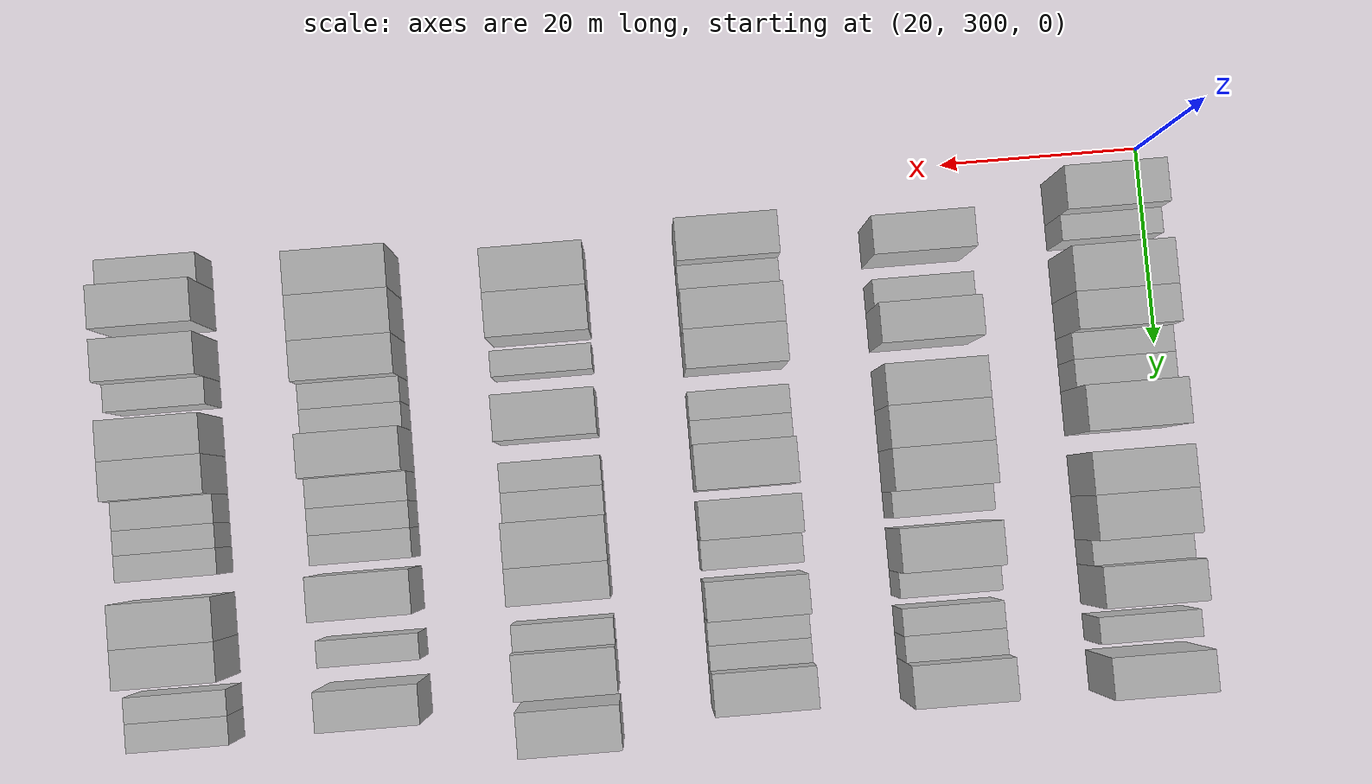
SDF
<sdf version="1.6">
 <world name="default">
  <model name="building_155">
   <static>1</static>
   <pose>25.0000 304.9905 0 0.000000 0.000000 0.000000</pose>
   <link name="link">
    <pose>0 0 4.50 0 0 0</pose>
    <collision name="collision"><geometry><box><size>10.0000 4.2668 9.0000</size></box></geometry></collision>
    <visual name="visual">
     <cast_shadows>0</cast_shadows>
     <geometry><box><size>10.0000 4.2668 9.0000</size></box></geometry>
     <material>
      <script>
       <uri>model://HANNAS_wall/materials/scripts</uri>
       <uri>model://HANNAS_wall/materials/textures</uri>
       <name>vrc/HANNAS_wall</name>
      </script>
     </material>
    </visual>
   </link>
  </model>
  <model name="building_156">
   <static>1</static>
   <pose>25.0000 308.3949 0 0.000000 0.000000 0.000000</pose>
   <link name="link">
    <pose>0 0 3.00 0 0 0</pose>
    <collision name="collision"><geometry><box><size>10.0000 2.5421 6.0000</size></box></geometry></collision>
    <visual name="visual">
     <cast_shadows>0</cast_shadows>
     <geometry><box><size>10.0000 2.5421 6.0000</size></box></geometry>
     <material>
      <script>
       <uri>model://HANNAS_wall/materials/scripts</uri>
       <uri>model://HANNAS_wall/materials/textures</uri>
       <name>vrc/HANNAS_wall</name>
      </script>
     </material>
    </visual>
   </link>
  </model>
  <model name="building_157">
   <static>1</static>
   <pose>25.0000 312.8846 0 0.000000 0.000000 0.000000</pose>
   <link name="link">
    <pose>0 0 4.50 0 0 0</pose>
    <collision name="collision"><geometry><box><size>10.0000 4.4374 9.0000</size></box></geometry></collision>
    <visual name="visual">
     <cast_shadows>0</cast_shadows>
     <geometry><box><size>10.0000 4.4374 9.0000</size></box></geometry>
     <material>
      <script>
       <uri>model://HANNAS_wall/materials/scripts</uri>
       <uri>model://HANNAS_wall/materials/textures</uri>
       <name>vrc/HANNAS_wall</name>
      </script>
     </material>
    </visual>
   </link>
  </model>
  <model name="building_158">
   <static>1</static>
   <pose>25.0000 316.9431 0 0.000000 0.000000 0.000000</pose>
   <link name="link">
    <pose>0 0 4.50 0 0 0</pose>
    <collision name="collision"><geometry><box><size>10.0000 3.6796 9.0000</size></box></geometry></collision>
    <visual name="visual">
     <cast_shadows>0</cast_shadows>
     <geometry><box><size>10.0000 3.6796 9.0000</size></box></geometry>
     <material>
      <script>
       <uri>model://HANNAS_wall/materials/scripts</uri>
       <uri>model://HANNAS_wall/materials/textures</uri>
       <name>vrc/HANNAS_wall</name>
      </script>
     </material>
    </visual>
   </link>
  </model>
  <model name="building_159">
   <static>1</static>
   <pose>25.0000 320.0930 0 0.000000 0.000000 0.000000</pose>
   <link name="link">
    <pose>0 0 3.00 0 0 0</pose>
    <collision name="collision"><geometry><box><size>10.0000 2.6202 6.0000</size></box></geometry></collision>
    <visual name="visual">
     <cast_shadows>0</cast_shadows>
     <geometry><box><size>10.0000 2.6202 6.0000</size></box></geometry>
     <material>
      <script>
       <uri>model://HANNAS_wall/materials/scripts</uri>
       <uri>model://HANNAS_wall/materials/textures</uri>
       <name>vrc/HANNAS_wall</name>
      </script>
     </material>
    </visual>
   </link>
  </model>
  <model name="building_160">
   <static>1</static>
   <pose>25.0000 322.7747 0 0.000000 0.000000 0.000000</pose>
   <link name="link">
    <pose>0 0 3.00 0 0 0</pose>
    <collision name="collision"><geometry><box><size>10.0000 2.7431 6.0000</size></box></geometry></collision>
    <visual name="visual">
     <cast_shadows>0</cast_shadows>
     <geometry><box><size>10.0000 2.7431 6.0000</size></box></geometry>
     <material>
      <script>
       <uri>model://HANNAS_wall/materials/scripts</uri>
       <uri>model://HANNAS_wall/materials/textures</uri>
       <name>vrc/HANNAS_wall</name>
      </script>
     </material>
    </visual>
   </link>
  </model>
  <model name="building_161">
   <static>1</static>
   <pose>25.0000 326.3790 0 0.000000 0.000000 0.000000</pose>
   <link name="link">
    <pose>0 0 4.50 0 0 0</pose>
    <collision name="collision"><geometry><box><size>10.0000 4.4657 9.0000</size></box></geometry></collision>
    <visual name="visual">
     <cast_shadows>0</cast_shadows>
     <geometry><box><size>10.0000 4.4657 9.0000</size></box></geometry>
     <material>
      <script>
       <uri>model://HANNAS_wall/materials/scripts</uri>
       <uri>model://HANNAS_wall/materials/textures</uri>
       <name>vrc/HANNAS_wall</name>
      </script>
     </material>
    </visual>
   </link>
  </model>
  <model name="building_162">
   <static>1</static>
   <pose>25.0000 332.6832 0 0.000000 0.000000 0.000000</pose>
   <link name="link">
    <pose>0 0 4.50 0 0 0</pose>
    <collision name="collision"><geometry><box><size>10.0000 4.1427 9.0000</size></box></geometry></collision>
    <visual name="visual">
     <cast_shadows>0</cast_shadows>
     <geometry><box><size>10.0000 4.1427 9.0000</size></box></geometry>
     <material>
      <script>
       <uri>model://HANNAS_wall/materials/scripts</uri>
       <uri>model://HANNAS_wall/materials/textures</uri>
       <name>vrc/HANNAS_wall</name>
      </script>
     </material>
    </visual>
   </link>
  </model>
  <model name="building_163">
   <static>1</static>
   <pose>25.0000 336.9402 0 0.000000 0.000000 0.000000</pose>
   <link name="link">
    <pose>0 0 4.50 0 0 0</pose>
    <collision name="collision"><geometry><box><size>10.0000 4.3712 9.0000</size></box></geometry></collision>
    <visual name="visual">
     <cast_shadows>0</cast_shadows>
     <geometry><box><size>10.0000 4.3712 9.0000</size></box></geometry>
     <material>
      <script>
       <uri>model://HANNAS_wall/materials/scripts</uri>
       <uri>model://HANNAS_wall/materials/textures</uri>
       <name>vrc/HANNAS_wall</name>
      </script>
     </material>
    </visual>
   </link>
  </model>
  <model name="building_164">
   <static>1</static>
   <pose>25.0000 340.3704 0 0.000000 0.000000 0.000000</pose>
   <link name="link">
    <pose>0 0 3.00 0 0 0</pose>
    <collision name="collision"><geometry><box><size>10.0000 2.4893 6.0000</size></box></geometry></collision>
    <visual name="visual">
     <cast_shadows>0</cast_shadows>
     <geometry><box><size>10.0000 2.4893 6.0000</size></box></geometry>
     <material>
      <script>
       <uri>model://HANNAS_wall/materials/scripts</uri>
       <uri>model://HANNAS_wall/materials/textures</uri>
       <name>vrc/HANNAS_wall</name>
      </script>
     </material>
    </visual>
   </link>
  </model>
  <model name="building_165">
   <static>1</static>
   <pose>25.0000 343.6177 0 0.000000 0.000000 0.000000</pose>
   <link name="link">
    <pose>0 0 4.50 0 0 0</pose>
    <collision name="collision"><geometry><box><size>10.0000 4.0052 9.0000</size></box></geometry></collision>
    <visual name="visual">
     <cast_shadows>0</cast_shadows>
     <geometry><box><size>10.0000 4.0052 9.0000</size></box></geometry>
     <material>
      <script>
       <uri>model://HANNAS_wall/materials/scripts</uri>
       <uri>model://HANNAS_wall/materials/textures</uri>
       <name>vrc/HANNAS_wall</name>
      </script>
     </material>
    </visual>
   </link>
  </model>
  <model name="building_166">
   <static>1</static>
   <pose>25.0000 347.9388 0 0.000000 0.000000 0.000000</pose>
   <link name="link">
    <pose>0 0 3.00 0 0 0</pose>
    <collision name="collision"><geometry><box><size>10.0000 2.6370 6.0000</size></box></geometry></collision>
    <visual name="visual">
     <cast_shadows>0</cast_shadows>
     <geometry><box><size>10.0000 2.6370 6.0000</size></box></geometry>
     <material>
      <script>
       <uri>model://HANNAS_wall/materials/scripts</uri>
       <uri>model://HANNAS_wall/materials/textures</uri>
       <name>vrc/HANNAS_wall</name>
      </script>
     </material>
    </visual>
   </link>
  </model>
  <model name="building_167">
   <static>1</static>
   <pose>25.0000 352.2863 0 0.000000 0.000000 0.000000</pose>
   <link name="link">
    <pose>0 0 4.50 0 0 0</pose>
    <collision name="collision"><geometry><box><size>10.0000 4.0581 9.0000</size></box></geometry></collision>
    <visual name="visual">
     <cast_shadows>0</cast_shadows>
     <geometry><box><size>10.0000 4.0581 9.0000</size></box></geometry>
     <material>
      <script>
       <uri>model://HANNAS_wall/materials/scripts</uri>
       <uri>model://HANNAS_wall/materials/textures</uri>
       <name>vrc/HANNAS_wall</name>
      </script>
     </material>
    </visual>
   </link>
  </model>
  <model name="building_329">
   <static>1</static>
   <pose>44.0000 308.0372 0 0.000000 0.000000 0.000000</pose>
   <link name="link">
    <pose>0 0 4.50 0 0 0</pose>
    <collision name="collision"><geometry><box><size>10.0000 3.7780 9.0000</size></box></geometry></collision>
    <visual name="visual">
     <cast_shadows>0</cast_shadows>
     <geometry><box><size>10.0000 3.7780 9.0000</size></box></geometry>
     <material>
      <script>
       <uri>model://HANNAS_wall/materials/scripts</uri>
       <uri>model://HANNAS_wall/materials/textures</uri>
       <name>vrc/HANNAS_wall</name>
      </script>
     </material>
    </visual>
   </link>
  </model>
  <model name="building_330">
   <static>1</static>
   <pose>44.0000 313.2632 0 0.000000 0.000000 0.000000</pose>
   <link name="link">
    <pose>0 0 3.00 0 0 0</pose>
    <collision name="collision"><geometry><box><size>10.0000 2.6741 6.0000</size></box></geometry></collision>
    <visual name="visual">
     <cast_shadows>0</cast_shadows>
     <geometry><box><size>10.0000 2.6741 6.0000</size></box></geometry>
     <material>
      <script>
       <uri>model://HANNAS_wall/materials/scripts</uri>
       <uri>model://HANNAS_wall/materials/textures</uri>
       <name>vrc/HANNAS_wall</name>
      </script>
     </material>
    </visual>
   </link>
  </model>
  <model name="building_331">
   <static>1</static>
   <pose>44.0000 316.5633 0 0.000000 0.000000 0.000000</pose>
   <link name="link">
    <pose>0 0 4.50 0 0 0</pose>
    <collision name="collision"><geometry><box><size>10.0000 3.9261 9.0000</size></box></geometry></collision>
    <visual name="visual">
     <cast_shadows>0</cast_shadows>
     <geometry><box><size>10.0000 3.9261 9.0000</size></box></geometry>
     <material>
      <script>
       <uri>model://HANNAS_wall/materials/scripts</uri>
       <uri>model://HANNAS_wall/materials/textures</uri>
       <name>vrc/HANNAS_wall</name>
      </script>
     </material>
    </visual>
   </link>
  </model>
  <model name="building_332">
   <static>1</static>
   <pose>44.0000 322.5391 0 0.000000 0.000000 0.000000</pose>
   <link name="link">
    <pose>0 0 4.50 0 0 0</pose>
    <collision name="collision"><geometry><box><size>10.0000 4.0256 9.0000</size></box></geometry></collision>
    <visual name="visual">
     <cast_shadows>0</cast_shadows>
     <geometry><box><size>10.0000 4.0256 9.0000</size></box></geometry>
     <material>
      <script>
       <uri>model://HANNAS_wall/materials/scripts</uri>
       <uri>model://HANNAS_wall/materials/textures</uri>
       <name>vrc/HANNAS_wall</name>
      </script>
     </material>
    </visual>
   </link>
  </model>
  <model name="building_333">
   <static>1</static>
   <pose>44.0000 326.6093 0 0.000000 0.000000 0.000000</pose>
   <link name="link">
    <pose>0 0 4.50 0 0 0</pose>
    <collision name="collision"><geometry><box><size>10.0000 4.1147 9.0000</size></box></geometry></collision>
    <visual name="visual">
     <cast_shadows>0</cast_shadows>
     <geometry><box><size>10.0000 4.1147 9.0000</size></box></geometry>
     <material>
      <script>
       <uri>model://HANNAS_wall/materials/scripts</uri>
       <uri>model://HANNAS_wall/materials/textures</uri>
       <name>vrc/HANNAS_wall</name>
      </script>
     </material>
    </visual>
   </link>
  </model>
  <model name="building_334">
   <static>1</static>
   <pose>44.0000 330.7275 0 0.000000 0.000000 0.000000</pose>
   <link name="link">
    <pose>0 0 4.50 0 0 0</pose>
    <collision name="collision"><geometry><box><size>10.0000 4.1217 9.0000</size></box></geometry></collision>
    <visual name="visual">
     <cast_shadows>0</cast_shadows>
     <geometry><box><size>10.0000 4.1217 9.0000</size></box></geometry>
     <material>
      <script>
       <uri>model://HANNAS_wall/materials/scripts</uri>
       <uri>model://HANNAS_wall/materials/textures</uri>
       <name>vrc/HANNAS_wall</name>
      </script>
     </material>
    </visual>
   </link>
  </model>
  <model name="building_335">
   <static>1</static>
   <pose>44.0000 334.0844 0 0.000000 0.000000 0.000000</pose>
   <link name="link">
    <pose>0 0 3.00 0 0 0</pose>
    <collision name="collision"><geometry><box><size>10.0000 2.5922 6.0000</size></box></geometry></collision>
    <visual name="visual">
     <cast_shadows>0</cast_shadows>
     <geometry><box><size>10.0000 2.5922 6.0000</size></box></geometry>
     <material>
      <script>
       <uri>model://HANNAS_wall/materials/scripts</uri>
       <uri>model://HANNAS_wall/materials/textures</uri>
       <name>vrc/HANNAS_wall</name>
      </script>
     </material>
    </visual>
   </link>
  </model>
  <model name="building_336">
   <static>1</static>
   <pose>44.0000 338.5178 0 0.000000 0.000000 0.000000</pose>
   <link name="link">
    <pose>0 0 4.50 0 0 0</pose>
    <collision name="collision"><geometry><box><size>10.0000 4.2746 9.0000</size></box></geometry></collision>
    <visual name="visual">
     <cast_shadows>0</cast_shadows>
     <geometry><box><size>10.0000 4.2746 9.0000</size></box></geometry>
     <material>
      <script>
       <uri>model://HANNAS_wall/materials/scripts</uri>
       <uri>model://HANNAS_wall/materials/textures</uri>
       <name>vrc/HANNAS_wall</name>
      </script>
     </material>
    </visual>
   </link>
  </model>
  <model name="building_337">
   <static>1</static>
   <pose>44.0000 341.9298 0 0.000000 0.000000 0.000000</pose>
   <link name="link">
    <pose>0 0 3.00 0 0 0</pose>
    <collision name="collision"><geometry><box><size>10.0000 2.5495 6.0000</size></box></geometry></collision>
    <visual name="visual">
     <cast_shadows>0</cast_shadows>
     <geometry><box><size>10.0000 2.5495 6.0000</size></box></geometry>
     <material>
      <script>
       <uri>model://HANNAS_wall/materials/scripts</uri>
       <uri>model://HANNAS_wall/materials/textures</uri>
       <name>vrc/HANNAS_wall</name>
      </script>
     </material>
    </visual>
   </link>
  </model>
  <model name="building_338">
   <static>1</static>
   <pose>44.0000 345.5436 0 0.000000 0.000000 0.000000</pose>
   <link name="link">
    <pose>0 0 3.00 0 0 0</pose>
    <collision name="collision"><geometry><box><size>10.0000 2.6781 6.0000</size></box></geometry></collision>
    <visual name="visual">
     <cast_shadows>0</cast_shadows>
     <geometry><box><size>10.0000 2.6781 6.0000</size></box></geometry>
     <material>
      <script>
       <uri>model://HANNAS_wall/materials/scripts</uri>
       <uri>model://HANNAS_wall/materials/textures</uri>
       <name>vrc/HANNAS_wall</name>
      </script>
     </material>
    </visual>
   </link>
  </model>
  <model name="building_339">
   <static>1</static>
   <pose>44.0000 348.1666 0 0.000000 0.000000 0.000000</pose>
   <link name="link">
    <pose>0 0 3.00 0 0 0</pose>
    <collision name="collision"><geometry><box><size>10.0000 2.5678 6.0000</size></box></geometry></collision>
    <visual name="visual">
     <cast_shadows>0</cast_shadows>
     <geometry><box><size>10.0000 2.5678 6.0000</size></box></geometry>
     <material>
      <script>
       <uri>model://HANNAS_wall/materials/scripts</uri>
       <uri>model://HANNAS_wall/materials/textures</uri>
       <name>vrc/HANNAS_wall</name>
      </script>
     </material>
    </visual>
   </link>
  </model>
  <model name="building_340">
   <static>1</static>
   <pose>44.0000 351.5068 0 0.000000 0.000000 0.000000</pose>
   <link name="link">
    <pose>0 0 4.50 0 0 0</pose>
    <collision name="collision"><geometry><box><size>10.0000 4.1124 9.0000</size></box></geometry></collision>
    <visual name="visual">
     <cast_shadows>0</cast_shadows>
     <geometry><box><size>10.0000 4.1124 9.0000</size></box></geometry>
     <material>
      <script>
       <uri>model://HANNAS_wall/materials/scripts</uri>
       <uri>model://HANNAS_wall/materials/textures</uri>
       <name>vrc/HANNAS_wall</name>
      </script>
     </material>
    </visual>
   </link>
  </model>
  <model name="building_501">
   <static>1</static>
   <pose>63.0000 306.8875 0 0.000000 0.000000 0.000000</pose>
   <link name="link">
    <pose>0 0 4.50 0 0 0</pose>
    <collision name="collision"><geometry><box><size>10.0000 4.1693 9.0000</size></box></geometry></collision>
    <visual name="visual">
     <cast_shadows>0</cast_shadows>
     <geometry><box><size>10.0000 4.1693 9.0000</size></box></geometry>
     <material>
      <script>
       <uri>model://HANNAS_wall/materials/scripts</uri>
       <uri>model://HANNAS_wall/materials/textures</uri>
       <name>vrc/HANNAS_wall</name>
      </script>
     </material>
    </visual>
   </link>
  </model>
  <model name="building_502">
   <static>1</static>
   <pose>63.0000 310.3520 0 0.000000 0.000000 0.000000</pose>
   <link name="link">
    <pose>0 0 3.00 0 0 0</pose>
    <collision name="collision"><geometry><box><size>10.0000 2.7596 6.0000</size></box></geometry></collision>
    <visual name="visual">
     <cast_shadows>0</cast_shadows>
     <geometry><box><size>10.0000 2.7596 6.0000</size></box></geometry>
     <material>
      <script>
       <uri>model://HANNAS_wall/materials/scripts</uri>
       <uri>model://HANNAS_wall/materials/textures</uri>
       <name>vrc/HANNAS_wall</name>
      </script>
     </material>
    </visual>
   </link>
  </model>
  <model name="building_503">
   <static>1</static>
   <pose>63.0000 313.6686 0 0.000000 0.000000 0.000000</pose>
   <link name="link">
    <pose>0 0 4.50 0 0 0</pose>
    <collision name="collision"><geometry><box><size>10.0000 3.8735 9.0000</size></box></geometry></collision>
    <visual name="visual">
     <cast_shadows>0</cast_shadows>
     <geometry><box><size>10.0000 3.8735 9.0000</size></box></geometry>
     <material>
      <script>
       <uri>model://HANNAS_wall/materials/scripts</uri>
       <uri>model://HANNAS_wall/materials/textures</uri>
       <name>vrc/HANNAS_wall</name>
      </script>
     </material>
    </visual>
   </link>
  </model>
  <model name="building_504">
   <static>1</static>
   <pose>63.0000 317.5265 0 0.000000 0.000000 0.000000</pose>
   <link name="link">
    <pose>0 0 4.50 0 0 0</pose>
    <collision name="collision"><geometry><box><size>10.0000 3.8423 9.0000</size></box></geometry></collision>
    <visual name="visual">
     <cast_shadows>0</cast_shadows>
     <geometry><box><size>10.0000 3.8423 9.0000</size></box></geometry>
     <material>
      <script>
       <uri>model://HANNAS_wall/materials/scripts</uri>
       <uri>model://HANNAS_wall/materials/textures</uri>
       <name>vrc/HANNAS_wall</name>
      </script>
     </material>
    </visual>
   </link>
  </model>
  <model name="building_505">
   <static>1</static>
   <pose>63.0000 322.8554 0 0.000000 0.000000 0.000000</pose>
   <link name="link">
    <pose>0 0 3.00 0 0 0</pose>
    <collision name="collision"><geometry><box><size>10.0000 2.8155 6.0000</size></box></geometry></collision>
    <visual name="visual">
     <cast_shadows>0</cast_shadows>
     <geometry><box><size>10.0000 2.8155 6.0000</size></box></geometry>
     <material>
      <script>
       <uri>model://HANNAS_wall/materials/scripts</uri>
       <uri>model://HANNAS_wall/materials/textures</uri>
       <name>vrc/HANNAS_wall</name>
      </script>
     </material>
    </visual>
   </link>
  </model>
  <model name="building_506">
   <static>1</static>
   <pose>63.0000 325.4965 0 0.000000 0.000000 0.000000</pose>
   <link name="link">
    <pose>0 0 3.00 0 0 0</pose>
    <collision name="collision"><geometry><box><size>10.0000 2.4666 6.0000</size></box></geometry></collision>
    <visual name="visual">
     <cast_shadows>0</cast_shadows>
     <geometry><box><size>10.0000 2.4666 6.0000</size></box></geometry>
     <material>
      <script>
       <uri>model://HANNAS_wall/materials/scripts</uri>
       <uri>model://HANNAS_wall/materials/textures</uri>
       <name>vrc/HANNAS_wall</name>
      </script>
     </material>
    </visual>
   </link>
  </model>
  <model name="building_507">
   <static>1</static>
   <pose>63.0000 328.9506 0 0.000000 0.000000 0.000000</pose>
   <link name="link">
    <pose>0 0 4.50 0 0 0</pose>
    <collision name="collision"><geometry><box><size>10.0000 4.4417 9.0000</size></box></geometry></collision>
    <visual name="visual">
     <cast_shadows>0</cast_shadows>
     <geometry><box><size>10.0000 4.4417 9.0000</size></box></geometry>
     <material>
      <script>
       <uri>model://HANNAS_wall/materials/scripts</uri>
       <uri>model://HANNAS_wall/materials/textures</uri>
       <name>vrc/HANNAS_wall</name>
      </script>
     </material>
    </visual>
   </link>
  </model>
  <model name="building_508">
   <static>1</static>
   <pose>63.0000 334.0584 0 0.000000 0.000000 0.000000</pose>
   <link name="link">
    <pose>0 0 4.50 0 0 0</pose>
    <collision name="collision"><geometry><box><size>10.0000 3.7738 9.0000</size></box></geometry></collision>
    <visual name="visual">
     <cast_shadows>0</cast_shadows>
     <geometry><box><size>10.0000 3.7738 9.0000</size></box></geometry>
     <material>
      <script>
       <uri>model://HANNAS_wall/materials/scripts</uri>
       <uri>model://HANNAS_wall/materials/textures</uri>
       <name>vrc/HANNAS_wall</name>
      </script>
     </material>
    </visual>
   </link>
  </model>
  <model name="building_509">
   <static>1</static>
   <pose>63.0000 337.4276 0 0.000000 0.000000 0.000000</pose>
   <link name="link">
    <pose>0 0 3.00 0 0 0</pose>
    <collision name="collision"><geometry><box><size>10.0000 2.9646 6.0000</size></box></geometry></collision>
    <visual name="visual">
     <cast_shadows>0</cast_shadows>
     <geometry><box><size>10.0000 2.9646 6.0000</size></box></geometry>
     <material>
      <script>
       <uri>model://HANNAS_wall/materials/scripts</uri>
       <uri>model://HANNAS_wall/materials/textures</uri>
       <name>vrc/HANNAS_wall</name>
      </script>
     </material>
    </visual>
   </link>
  </model>
  <model name="building_510">
   <static>1</static>
   <pose>63.0000 341.8190 0 0.000000 0.000000 0.000000</pose>
   <link name="link">
    <pose>0 0 4.50 0 0 0</pose>
    <collision name="collision"><geometry><box><size>10.0000 3.8181 9.0000</size></box></geometry></collision>
    <visual name="visual">
     <cast_shadows>0</cast_shadows>
     <geometry><box><size>10.0000 3.8181 9.0000</size></box></geometry>
     <material>
      <script>
       <uri>model://HANNAS_wall/materials/scripts</uri>
       <uri>model://HANNAS_wall/materials/textures</uri>
       <name>vrc/HANNAS_wall</name>
      </script>
     </material>
    </visual>
   </link>
  </model>
  <model name="building_511">
   <static>1</static>
   <pose>63.0000 344.9813 0 0.000000 0.000000 0.000000</pose>
   <link name="link">
    <pose>0 0 3.00 0 0 0</pose>
    <collision name="collision"><geometry><box><size>10.0000 2.5065 6.0000</size></box></geometry></collision>
    <visual name="visual">
     <cast_shadows>0</cast_shadows>
     <geometry><box><size>10.0000 2.5065 6.0000</size></box></geometry>
     <material>
      <script>
       <uri>model://HANNAS_wall/materials/scripts</uri>
       <uri>model://HANNAS_wall/materials/textures</uri>
       <name>vrc/HANNAS_wall</name>
      </script>
     </material>
    </visual>
   </link>
  </model>
  <model name="building_512">
   <static>1</static>
   <pose>63.0000 347.4413 0 0.000000 0.000000 0.000000</pose>
   <link name="link">
    <pose>0 0 3.00 0 0 0</pose>
    <collision name="collision"><geometry><box><size>10.0000 2.4136 6.0000</size></box></geometry></collision>
    <visual name="visual">
     <cast_shadows>0</cast_shadows>
     <geometry><box><size>10.0000 2.4136 6.0000</size></box></geometry>
     <material>
      <script>
       <uri>model://HANNAS_wall/materials/scripts</uri>
       <uri>model://HANNAS_wall/materials/textures</uri>
       <name>vrc/HANNAS_wall</name>
      </script>
     </material>
    </visual>
   </link>
  </model>
  <model name="building_513">
   <static>1</static>
   <pose>63.0000 350.6951 0 0.000000 0.000000 0.000000</pose>
   <link name="link">
    <pose>0 0 4.50 0 0 0</pose>
    <collision name="collision"><geometry><box><size>10.0000 4.0941 9.0000</size></box></geometry></collision>
    <visual name="visual">
     <cast_shadows>0</cast_shadows>
     <geometry><box><size>10.0000 4.0941 9.0000</size></box></geometry>
     <material>
      <script>
       <uri>model://HANNAS_wall/materials/scripts</uri>
       <uri>model://HANNAS_wall/materials/textures</uri>
       <name>vrc/HANNAS_wall</name>
      </script>
     </material>
    </visual>
   </link>
  </model>
  <model name="building_686">
   <static>1</static>
   <pose>82.0000 308.3115 0 0.000000 0.000000 0.000000</pose>
   <link name="link">
    <pose>0 0 4.50 0 0 0</pose>
    <collision name="collision"><geometry><box><size>10.0000 4.2965 9.0000</size></box></geometry></collision>
    <visual name="visual">
     <cast_shadows>0</cast_shadows>
     <geometry><box><size>10.0000 4.2965 9.0000</size></box></geometry>
     <material>
      <script>
       <uri>model://HANNAS_wall/materials/scripts</uri>
       <uri>model://HANNAS_wall/materials/textures</uri>
       <name>vrc/HANNAS_wall</name>
      </script>
     </material>
    </visual>
   </link>
  </model>
  <model name="building_687">
   <static>1</static>
   <pose>82.0000 312.6453 0 0.000000 0.000000 0.000000</pose>
   <link name="link">
    <pose>0 0 4.50 0 0 0</pose>
    <collision name="collision"><geometry><box><size>10.0000 4.3709 9.0000</size></box></geometry></collision>
    <visual name="visual">
     <cast_shadows>0</cast_shadows>
     <geometry><box><size>10.0000 4.3709 9.0000</size></box></geometry>
     <material>
      <script>
       <uri>model://HANNAS_wall/materials/scripts</uri>
       <uri>model://HANNAS_wall/materials/textures</uri>
       <name>vrc/HANNAS_wall</name>
      </script>
     </material>
    </visual>
   </link>
  </model>
  <model name="building_688">
   <static>1</static>
   <pose>82.0000 317.1031 0 0.000000 0.000000 0.000000</pose>
   <link name="link">
    <pose>0 0 3.00 0 0 0</pose>
    <collision name="collision"><geometry><box><size>10.0000 2.5447 6.0000</size></box></geometry></collision>
    <visual name="visual">
     <cast_shadows>0</cast_shadows>
     <geometry><box><size>10.0000 2.5447 6.0000</size></box></geometry>
     <material>
      <script>
       <uri>model://HANNAS_wall/materials/scripts</uri>
       <uri>model://HANNAS_wall/materials/textures</uri>
       <name>vrc/HANNAS_wall</name>
      </script>
     </material>
    </visual>
   </link>
  </model>
  <model name="building_689">
   <static>1</static>
   <pose>82.0000 322.6159 0 0.000000 0.000000 0.000000</pose>
   <link name="link">
    <pose>0 0 4.50 0 0 0</pose>
    <collision name="collision"><geometry><box><size>10.0000 4.4808 9.0000</size></box></geometry></collision>
    <visual name="visual">
     <cast_shadows>0</cast_shadows>
     <geometry><box><size>10.0000 4.4808 9.0000</size></box></geometry>
     <material>
      <script>
       <uri>model://HANNAS_wall/materials/scripts</uri>
       <uri>model://HANNAS_wall/materials/textures</uri>
       <name>vrc/HANNAS_wall</name>
      </script>
     </material>
    </visual>
   </link>
  </model>
  <model name="building_690">
   <static>1</static>
   <pose>82.0000 328.3118 0 0.000000 0.000000 0.000000</pose>
   <link name="link">
    <pose>0 0 3.00 0 0 0</pose>
    <collision name="collision"><geometry><box><size>10.0000 2.9109 6.0000</size></box></geometry></collision>
    <visual name="visual">
     <cast_shadows>0</cast_shadows>
     <geometry><box><size>10.0000 2.9109 6.0000</size></box></geometry>
     <material>
      <script>
       <uri>model://HANNAS_wall/materials/scripts</uri>
       <uri>model://HANNAS_wall/materials/textures</uri>
       <name>vrc/HANNAS_wall</name>
      </script>
     </material>
    </visual>
   </link>
  </model>
  <model name="building_691">
   <static>1</static>
   <pose>82.0000 331.2262 0 0.000000 0.000000 0.000000</pose>
   <link name="link">
    <pose>0 0 3.00 0 0 0</pose>
    <collision name="collision"><geometry><box><size>10.0000 2.9180 6.0000</size></box></geometry></collision>
    <visual name="visual">
     <cast_shadows>0</cast_shadows>
     <geometry><box><size>10.0000 2.9180 6.0000</size></box></geometry>
     <material>
      <script>
       <uri>model://HANNAS_wall/materials/scripts</uri>
       <uri>model://HANNAS_wall/materials/textures</uri>
       <name>vrc/HANNAS_wall</name>
      </script>
     </material>
    </visual>
   </link>
  </model>
  <model name="building_692">
   <static>1</static>
   <pose>82.0000 334.8748 0 0.000000 0.000000 0.000000</pose>
   <link name="link">
    <pose>0 0 4.50 0 0 0</pose>
    <collision name="collision"><geometry><box><size>10.0000 4.3793 9.0000</size></box></geometry></collision>
    <visual name="visual">
     <cast_shadows>0</cast_shadows>
     <geometry><box><size>10.0000 4.3793 9.0000</size></box></geometry>
     <material>
      <script>
       <uri>model://HANNAS_wall/materials/scripts</uri>
       <uri>model://HANNAS_wall/materials/textures</uri>
       <name>vrc/HANNAS_wall</name>
      </script>
     </material>
    </visual>
   </link>
  </model>
  <model name="building_693">
   <static>1</static>
   <pose>82.0000 338.8676 0 0.000000 0.000000 0.000000</pose>
   <link name="link">
    <pose>0 0 4.50 0 0 0</pose>
    <collision name="collision"><geometry><box><size>10.0000 3.6063 9.0000</size></box></geometry></collision>
    <visual name="visual">
     <cast_shadows>0</cast_shadows>
     <geometry><box><size>10.0000 3.6063 9.0000</size></box></geometry>
     <material>
      <script>
       <uri>model://HANNAS_wall/materials/scripts</uri>
       <uri>model://HANNAS_wall/materials/textures</uri>
       <name>vrc/HANNAS_wall</name>
      </script>
     </material>
    </visual>
   </link>
  </model>
  <model name="building_694">
   <static>1</static>
   <pose>82.0000 343.9702 0 0.000000 0.000000 0.000000</pose>
   <link name="link">
    <pose>0 0 3.00 0 0 0</pose>
    <collision name="collision"><geometry><box><size>10.0000 2.5990 6.0000</size></box></geometry></collision>
    <visual name="visual">
     <cast_shadows>0</cast_shadows>
     <geometry><box><size>10.0000 2.5990 6.0000</size></box></geometry>
     <material>
      <script>
       <uri>model://HANNAS_wall/materials/scripts</uri>
       <uri>model://HANNAS_wall/materials/textures</uri>
       <name>vrc/HANNAS_wall</name>
      </script>
     </material>
    </visual>
   </link>
  </model>
  <model name="building_695">
   <static>1</static>
   <pose>82.0000 347.5009 0 0.000000 0.000000 0.000000</pose>
   <link name="link">
    <pose>0 0 4.50 0 0 0</pose>
    <collision name="collision"><geometry><box><size>10.0000 4.4624 9.0000</size></box></geometry></collision>
    <visual name="visual">
     <cast_shadows>0</cast_shadows>
     <geometry><box><size>10.0000 4.4624 9.0000</size></box></geometry>
     <material>
      <script>
       <uri>model://HANNAS_wall/materials/scripts</uri>
       <uri>model://HANNAS_wall/materials/textures</uri>
       <name>vrc/HANNAS_wall</name>
      </script>
     </material>
    </visual>
   </link>
  </model>
  <model name="building_696">
   <static>1</static>
   <pose>82.0000 352.9234 0 0.000000 0.000000 0.000000</pose>
   <link name="link">
    <pose>0 0 4.50 0 0 0</pose>
    <collision name="collision"><geometry><box><size>10.0000 4.3827 9.0000</size></box></geometry></collision>
    <visual name="visual">
     <cast_shadows>0</cast_shadows>
     <geometry><box><size>10.0000 4.3827 9.0000</size></box></geometry>
     <material>
      <script>
       <uri>model://HANNAS_wall/materials/scripts</uri>
       <uri>model://HANNAS_wall/materials/textures</uri>
       <name>vrc/HANNAS_wall</name>
      </script>
     </material>
    </visual>
   </link>
  </model>
  <model name="building_856">
   <static>1</static>
   <pose>101.0000 307.0249 0 0.000000 0.000000 0.000000</pose>
   <link name="link">
    <pose>0 0 4.50 0 0 0</pose>
    <collision name="collision"><geometry><box><size>10.0000 4.2666 9.0000</size></box></geometry></collision>
    <visual name="visual">
     <cast_shadows>0</cast_shadows>
     <geometry><box><size>10.0000 4.2666 9.0000</size></box></geometry>
     <material>
      <script>
       <uri>model://HANNAS_wall/materials/scripts</uri>
       <uri>model://HANNAS_wall/materials/textures</uri>
       <name>vrc/HANNAS_wall</name>
      </script>
     </material>
    </visual>
   </link>
  </model>
  <model name="building_857">
   <static>1</static>
   <pose>101.0000 311.3600 0 0.000000 0.000000 0.000000</pose>
   <link name="link">
    <pose>0 0 4.50 0 0 0</pose>
    <collision name="collision"><geometry><box><size>10.0000 4.4036 9.0000</size></box></geometry></collision>
    <visual name="visual">
     <cast_shadows>0</cast_shadows>
     <geometry><box><size>10.0000 4.4036 9.0000</size></box></geometry>
     <material>
      <script>
       <uri>model://HANNAS_wall/materials/scripts</uri>
       <uri>model://HANNAS_wall/materials/textures</uri>
       <name>vrc/HANNAS_wall</name>
      </script>
     </material>
    </visual>
   </link>
  </model>
  <model name="building_858">
   <static>1</static>
   <pose>101.0000 315.5301 0 0.000000 0.000000 0.000000</pose>
   <link name="link">
    <pose>0 0 4.50 0 0 0</pose>
    <collision name="collision"><geometry><box><size>10.0000 3.9367 9.0000</size></box></geometry></collision>
    <visual name="visual">
     <cast_shadows>0</cast_shadows>
     <geometry><box><size>10.0000 3.9367 9.0000</size></box></geometry>
     <material>
      <script>
       <uri>model://HANNAS_wall/materials/scripts</uri>
       <uri>model://HANNAS_wall/materials/textures</uri>
       <name>vrc/HANNAS_wall</name>
      </script>
     </material>
    </visual>
   </link>
  </model>
  <model name="building_859">
   <static>1</static>
   <pose>101.0000 318.7576 0 0.000000 0.000000 0.000000</pose>
   <link name="link">
    <pose>0 0 3.00 0 0 0</pose>
    <collision name="collision"><geometry><box><size>10.0000 2.5183 6.0000</size></box></geometry></collision>
    <visual name="visual">
     <cast_shadows>0</cast_shadows>
     <geometry><box><size>10.0000 2.5183 6.0000</size></box></geometry>
     <material>
      <script>
       <uri>model://HANNAS_wall/materials/scripts</uri>
       <uri>model://HANNAS_wall/materials/textures</uri>
       <name>vrc/HANNAS_wall</name>
      </script>
     </material>
    </visual>
   </link>
  </model>
  <model name="building_860">
   <static>1</static>
   <pose>101.0000 321.2814 0 0.000000 0.000000 0.000000</pose>
   <link name="link">
    <pose>0 0 3.00 0 0 0</pose>
    <collision name="collision"><geometry><box><size>10.0000 2.5292 6.0000</size></box></geometry></collision>
    <visual name="visual">
     <cast_shadows>0</cast_shadows>
     <geometry><box><size>10.0000 2.5292 6.0000</size></box></geometry>
     <material>
      <script>
       <uri>model://HANNAS_wall/materials/scripts</uri>
       <uri>model://HANNAS_wall/materials/textures</uri>
       <name>vrc/HANNAS_wall</name>
      </script>
     </material>
    </visual>
   </link>
  </model>
  <model name="building_861">
   <static>1</static>
   <pose>101.0000 324.6812 0 0.000000 0.000000 0.000000</pose>
   <link name="link">
    <pose>0 0 4.50 0 0 0</pose>
    <collision name="collision"><geometry><box><size>10.0000 4.2705 9.0000</size></box></geometry></collision>
    <visual name="visual">
     <cast_shadows>0</cast_shadows>
     <geometry><box><size>10.0000 4.2705 9.0000</size></box></geometry>
     <material>
      <script>
       <uri>model://HANNAS_wall/materials/scripts</uri>
       <uri>model://HANNAS_wall/materials/textures</uri>
       <name>vrc/HANNAS_wall</name>
      </script>
     </material>
    </visual>
   </link>
  </model>
  <model name="building_862">
   <static>1</static>
   <pose>101.0000 328.2613 0 0.000000 0.000000 0.000000</pose>
   <link name="link">
    <pose>0 0 3.00 0 0 0</pose>
    <collision name="collision"><geometry><box><size>10.0000 2.8897 6.0000</size></box></geometry></collision>
    <visual name="visual">
     <cast_shadows>0</cast_shadows>
     <geometry><box><size>10.0000 2.8897 6.0000</size></box></geometry>
     <material>
      <script>
       <uri>model://HANNAS_wall/materials/scripts</uri>
       <uri>model://HANNAS_wall/materials/textures</uri>
       <name>vrc/HANNAS_wall</name>
      </script>
     </material>
    </visual>
   </link>
  </model>
  <model name="building_863">
   <static>1</static>
   <pose>101.0000 331.0308 0 0.000000 0.000000 0.000000</pose>
   <link name="link">
    <pose>0 0 3.00 0 0 0</pose>
    <collision name="collision"><geometry><box><size>10.0000 2.6494 6.0000</size></box></geometry></collision>
    <visual name="visual">
     <cast_shadows>0</cast_shadows>
     <geometry><box><size>10.0000 2.6494 6.0000</size></box></geometry>
     <material>
      <script>
       <uri>model://HANNAS_wall/materials/scripts</uri>
       <uri>model://HANNAS_wall/materials/textures</uri>
       <name>vrc/HANNAS_wall</name>
      </script>
     </material>
    </visual>
   </link>
  </model>
  <model name="building_864">
   <static>1</static>
   <pose>101.0000 333.8135 0 0.000000 0.000000 0.000000</pose>
   <link name="link">
    <pose>0 0 3.00 0 0 0</pose>
    <collision name="collision"><geometry><box><size>10.0000 2.9160 6.0000</size></box></geometry></collision>
    <visual name="visual">
     <cast_shadows>0</cast_shadows>
     <geometry><box><size>10.0000 2.9160 6.0000</size></box></geometry>
     <material>
      <script>
       <uri>model://HANNAS_wall/materials/scripts</uri>
       <uri>model://HANNAS_wall/materials/textures</uri>
       <name>vrc/HANNAS_wall</name>
      </script>
     </material>
    </visual>
   </link>
  </model>
  <model name="building_865">
   <static>1</static>
   <pose>101.0000 338.4326 0 0.000000 0.000000 0.000000</pose>
   <link name="link">
    <pose>0 0 4.50 0 0 0</pose>
    <collision name="collision"><geometry><box><size>10.0000 4.3221 9.0000</size></box></geometry></collision>
    <visual name="visual">
     <cast_shadows>0</cast_shadows>
     <geometry><box><size>10.0000 4.3221 9.0000</size></box></geometry>
     <material>
      <script>
       <uri>model://HANNAS_wall/materials/scripts</uri>
       <uri>model://HANNAS_wall/materials/textures</uri>
       <name>vrc/HANNAS_wall</name>
      </script>
     </material>
    </visual>
   </link>
  </model>
  <model name="building_866">
   <static>1</static>
   <pose>101.0000 343.8949 0 0.000000 0.000000 0.000000</pose>
   <link name="link">
    <pose>0 0 3.00 0 0 0</pose>
    <collision name="collision"><geometry><box><size>10.0000 2.6025 6.0000</size></box></geometry></collision>
    <visual name="visual">
     <cast_shadows>0</cast_shadows>
     <geometry><box><size>10.0000 2.6025 6.0000</size></box></geometry>
     <material>
      <script>
       <uri>model://HANNAS_wall/materials/scripts</uri>
       <uri>model://HANNAS_wall/materials/textures</uri>
       <name>vrc/HANNAS_wall</name>
      </script>
     </material>
    </visual>
   </link>
  </model>
  <model name="building_867">
   <static>1</static>
   <pose>101.0000 349.1438 0 0.000000 0.000000 0.000000</pose>
   <link name="link">
    <pose>0 0 4.50 0 0 0</pose>
    <collision name="collision"><geometry><box><size>10.0000 3.8953 9.0000</size></box></geometry></collision>
    <visual name="visual">
     <cast_shadows>0</cast_shadows>
     <geometry><box><size>10.0000 3.8953 9.0000</size></box></geometry>
     <material>
      <script>
       <uri>model://HANNAS_wall/materials/scripts</uri>
       <uri>model://HANNAS_wall/materials/textures</uri>
       <name>vrc/HANNAS_wall</name>
      </script>
     </material>
    </visual>
   </link>
  </model>
  <model name="building_1022">
   <static>1</static>
   <pose>120.0000 305.1406 0 0.000000 0.000000 0.000000</pose>
   <link name="link">
    <pose>0 0 3.00 0 0 0</pose>
    <collision name="collision"><geometry><box><size>10.0000 2.9271 6.0000</size></box></geometry></collision>
    <visual name="visual">
     <cast_shadows>0</cast_shadows>
     <geometry><box><size>10.0000 2.9271 6.0000</size></box></geometry>
     <material>
      <script>
       <uri>model://HANNAS_wall/materials/scripts</uri>
       <uri>model://HANNAS_wall/materials/textures</uri>
       <name>vrc/HANNAS_wall</name>
      </script>
     </material>
    </visual>
   </link>
  </model>
  <model name="building_1023">
   <static>1</static>
   <pose>120.0000 308.7202 0 0.000000 0.000000 0.000000</pose>
   <link name="link">
    <pose>0 0 4.50 0 0 0</pose>
    <collision name="collision"><geometry><box><size>10.0000 4.2322 9.0000</size></box></geometry></collision>
    <visual name="visual">
     <cast_shadows>0</cast_shadows>
     <geometry><box><size>10.0000 4.2322 9.0000</size></box></geometry>
     <material>
      <script>
       <uri>model://HANNAS_wall/materials/scripts</uri>
       <uri>model://HANNAS_wall/materials/textures</uri>
       <name>vrc/HANNAS_wall</name>
      </script>
     </material>
    </visual>
   </link>
  </model>
  <model name="building_1024">
   <static>1</static>
   <pose>120.0000 313.9044 0 0.000000 0.000000 0.000000</pose>
   <link name="link">
    <pose>0 0 4.50 0 0 0</pose>
    <collision name="collision"><geometry><box><size>10.0000 4.1363 9.0000</size></box></geometry></collision>
    <visual name="visual">
     <cast_shadows>0</cast_shadows>
     <geometry><box><size>10.0000 4.1363 9.0000</size></box></geometry>
     <material>
      <script>
       <uri>model://HANNAS_wall/materials/scripts</uri>
       <uri>model://HANNAS_wall/materials/textures</uri>
       <name>vrc/HANNAS_wall</name>
      </script>
     </material>
    </visual>
   </link>
  </model>
  <model name="building_1025">
   <static>1</static>
   <pose>120.0000 317.3312 0 0.000000 0.000000 0.000000</pose>
   <link name="link">
    <pose>0 0 3.00 0 0 0</pose>
    <collision name="collision"><geometry><box><size>10.0000 2.7173 6.0000</size></box></geometry></collision>
    <visual name="visual">
     <cast_shadows>0</cast_shadows>
     <geometry><box><size>10.0000 2.7173 6.0000</size></box></geometry>
     <material>
      <script>
       <uri>model://HANNAS_wall/materials/scripts</uri>
       <uri>model://HANNAS_wall/materials/textures</uri>
       <name>vrc/HANNAS_wall</name>
      </script>
     </material>
    </visual>
   </link>
  </model>
  <model name="building_1026">
   <static>1</static>
   <pose>120.0000 321.6649 0 0.000000 0.000000 0.000000</pose>
   <link name="link">
    <pose>0 0 4.50 0 0 0</pose>
    <collision name="collision"><geometry><box><size>10.0000 3.9499 9.0000</size></box></geometry></collision>
    <visual name="visual">
     <cast_shadows>0</cast_shadows>
     <geometry><box><size>10.0000 3.9499 9.0000</size></box></geometry>
     <material>
      <script>
       <uri>model://HANNAS_wall/materials/scripts</uri>
       <uri>model://HANNAS_wall/materials/textures</uri>
       <name>vrc/HANNAS_wall</name>
      </script>
     </material>
    </visual>
   </link>
  </model>
  <model name="building_1027">
   <static>1</static>
   <pose>120.0000 325.5594 0 0.000000 0.000000 0.000000</pose>
   <link name="link">
    <pose>0 0 4.50 0 0 0</pose>
    <collision name="collision"><geometry><box><size>10.0000 3.8392 9.0000</size></box></geometry></collision>
    <visual name="visual">
     <cast_shadows>0</cast_shadows>
     <geometry><box><size>10.0000 3.8392 9.0000</size></box></geometry>
     <material>
      <script>
       <uri>model://HANNAS_wall/materials/scripts</uri>
       <uri>model://HANNAS_wall/materials/textures</uri>
       <name>vrc/HANNAS_wall</name>
      </script>
     </material>
    </visual>
   </link>
  </model>
  <model name="building_1028">
   <static>1</static>
   <pose>120.0000 328.9009 0 0.000000 0.000000 0.000000</pose>
   <link name="link">
    <pose>0 0 3.00 0 0 0</pose>
    <collision name="collision"><geometry><box><size>10.0000 2.8437 6.0000</size></box></geometry></collision>
    <visual name="visual">
     <cast_shadows>0</cast_shadows>
     <geometry><box><size>10.0000 2.8437 6.0000</size></box></geometry>
     <material>
      <script>
       <uri>model://HANNAS_wall/materials/scripts</uri>
       <uri>model://HANNAS_wall/materials/textures</uri>
       <name>vrc/HANNAS_wall</name>
      </script>
     </material>
    </visual>
   </link>
  </model>
  <model name="building_1029">
   <static>1</static>
   <pose>120.0000 331.5374 0 0.000000 0.000000 0.000000</pose>
   <link name="link">
    <pose>0 0 3.00 0 0 0</pose>
    <collision name="collision"><geometry><box><size>10.0000 2.4294 6.0000</size></box></geometry></collision>
    <visual name="visual">
     <cast_shadows>0</cast_shadows>
     <geometry><box><size>10.0000 2.4294 6.0000</size></box></geometry>
     <material>
      <script>
       <uri>model://HANNAS_wall/materials/scripts</uri>
       <uri>model://HANNAS_wall/materials/textures</uri>
       <name>vrc/HANNAS_wall</name>
      </script>
     </material>
    </visual>
   </link>
  </model>
  <model name="building_1030">
   <static>1</static>
   <pose>120.0000 334.0517 0 0.000000 0.000000 0.000000</pose>
   <link name="link">
    <pose>0 0 3.00 0 0 0</pose>
    <collision name="collision"><geometry><box><size>10.0000 2.5992 6.0000</size></box></geometry></collision>
    <visual name="visual">
     <cast_shadows>0</cast_shadows>
     <geometry><box><size>10.0000 2.5992 6.0000</size></box></geometry>
     <material>
      <script>
       <uri>model://HANNAS_wall/materials/scripts</uri>
       <uri>model://HANNAS_wall/materials/textures</uri>
       <name>vrc/HANNAS_wall</name>
      </script>
     </material>
    </visual>
   </link>
  </model>
  <model name="building_1031">
   <static>1</static>
   <pose>120.0000 339.4931 0 0.000000 0.000000 0.000000</pose>
   <link name="link">
    <pose>0 0 4.50 0 0 0</pose>
    <collision name="collision"><geometry><box><size>10.0000 4.2836 9.0000</size></box></geometry></collision>
    <visual name="visual">
     <cast_shadows>0</cast_shadows>
     <geometry><box><size>10.0000 4.2836 9.0000</size></box></geometry>
     <material>
      <script>
       <uri>model://HANNAS_wall/materials/scripts</uri>
       <uri>model://HANNAS_wall/materials/textures</uri>
       <name>vrc/HANNAS_wall</name>
      </script>
     </material>
    </visual>
   </link>
  </model>
  <model name="building_1032">
   <static>1</static>
   <pose>120.0000 343.5659 0 0.000000 0.000000 0.000000</pose>
   <link name="link">
    <pose>0 0 4.50 0 0 0</pose>
    <collision name="collision"><geometry><box><size>10.0000 3.8618 9.0000</size></box></geometry></collision>
    <visual name="visual">
     <cast_shadows>0</cast_shadows>
     <geometry><box><size>10.0000 3.8618 9.0000</size></box></geometry>
     <material>
      <script>
       <uri>model://HANNAS_wall/materials/scripts</uri>
       <uri>model://HANNAS_wall/materials/textures</uri>
       <name>vrc/HANNAS_wall</name>
      </script>
     </material>
    </visual>
   </link>
  </model>
  <model name="building_1033">
   <static>1</static>
   <pose>120.0000 347.7730 0 0.000000 0.000000 0.000000</pose>
   <link name="link">
    <pose>0 0 3.00 0 0 0</pose>
    <collision name="collision"><geometry><box><size>10.0000 2.5526 6.0000</size></box></geometry></collision>
    <visual name="visual">
     <cast_shadows>0</cast_shadows>
     <geometry><box><size>10.0000 2.5526 6.0000</size></box></geometry>
     <material>
      <script>
       <uri>model://HANNAS_wall/materials/scripts</uri>
       <uri>model://HANNAS_wall/materials/textures</uri>
       <name>vrc/HANNAS_wall</name>
      </script>
     </material>
    </visual>
   </link>
  </model>
  <model name="building_1034">
   <static>1</static>
   <pose>120.0000 350.4554 0 0.000000 0.000000 0.000000</pose>
   <link name="link">
    <pose>0 0 3.00 0 0 0</pose>
    <collision name="collision"><geometry><box><size>10.0000 2.8121 6.0000</size></box></geometry></collision>
    <visual name="visual">
     <cast_shadows>0</cast_shadows>
     <geometry><box><size>10.0000 2.8121 6.0000</size></box></geometry>
     <material>
      <script>
       <uri>model://HANNAS_wall/materials/scripts</uri>
       <uri>model://HANNAS_wall/materials/textures</uri>
       <name>vrc/HANNAS_wall</name>
      </script>
     </material>
    </visual>
   </link>
  </model>
 </world>
</sdf>
